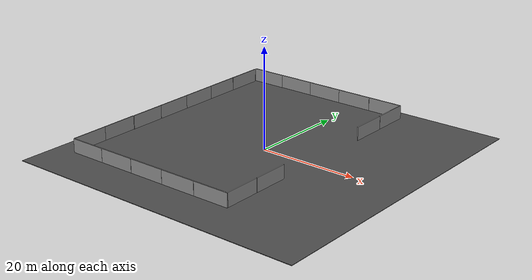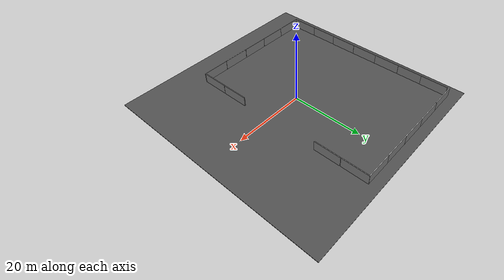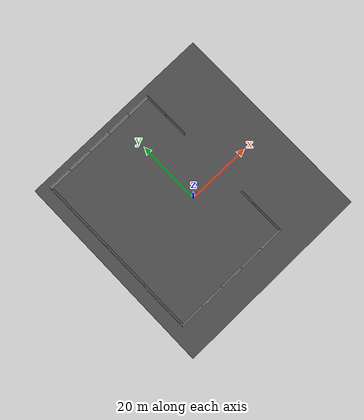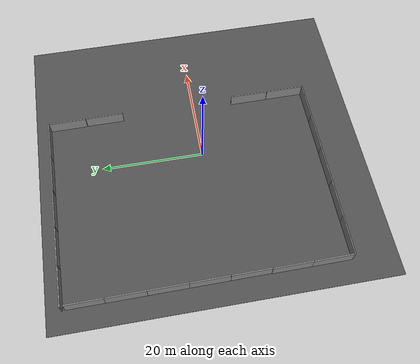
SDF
<sdf version="1.7">
 <world name="default">
  <light name="sun" type="directional">
   <pose>0 0 10 0 -0 0</pose>
   <diffuse>1 1 1 1</diffuse>
   <specular>0.2 0.2 0.2 1</specular>
   <attenuation>
    <range>1000</range>
    <constant>0.9</constant>
    <linear>0.01</linear>
    <quadratic>0.001</quadratic>
   </attenuation>
   <direction>-0.5 -0.5 -1</direction>
   <spot><inner_angle>0</inner_angle><outer_angle>0</outer_angle><falloff>0</falloff></spot>
  </light>
  <physics type="ode">
   <max_step_size>0.001</max_step_size>
   <real_time_factor>1</real_time_factor>
   <real_time_update_rate>1000</real_time_update_rate>
  </physics>
  <scene>
   <ambient>1 1 1 1</ambient>
   <background>1 1 1 1</background>
   <shadows>1</shadows>
   <sky><clouds><speed>12</speed></clouds></sky>
  </scene>
  <spherical_coordinates>
   <surface_model>EARTH_WGS84</surface_model>
   <latitude_deg>39.5122</latitude_deg>
   <longitude_deg>22.4267</longitude_deg>
   <elevation>344</elevation>
   <heading_deg>0</heading_deg>
  </spherical_coordinates>
  <gravity>0 0 -9.8</gravity>
  <magnetic_field>6e-06 2.3e-05 -4.2e-05</magnetic_field>
  <atmosphere type="adiabatic"/>
  <model name="asphalt_plane">
   <static>1</static>
   <link name="link">
    <collision name="collision"><geometry><box><size>62.1908 64.4728 0.1</size></box></geometry></collision>
    <visual name="visual">
     <cast_shadows>0</cast_shadows>
     <geometry><box><size>62.1908 64.4728 0.1</size></box></geometry>
     <material>
      <script>
       <uri>model://asphalt_plane/materials/scripts</uri>
       <uri>model://asphalt_plane/materials/textures</uri>
       <name>vrc/asphalt</name>
      </script>
     </material>
    </visual>
   </link>
   <pose>0.190531 0.410005 0 0 -0 0</pose>
  </model>
  <model name="grey_wall">
   <static>1</static>
   <link name="link">
    <pose>0 0 1.4 0 -0 0</pose>
    <collision name="collision"><geometry><box><size>7.5 0.2 2.8</size></box></geometry></collision>
    <visual name="visual">
     <cast_shadows>0</cast_shadows>
     <geometry><box><size>7.5 0.2 2.8</size></box></geometry>
     <material>
      <script>
       <uri>model://grey_wall/materials/scripts</uri>
       <uri>model://grey_wall/materials/textures</uri>
       <name>vrc/grey_wall</name>
      </script>
     </material>
    </visual>
   </link>
   <pose>6.94667 29.7483 0 0 -0 0</pose>
  </model>
  <model name="grey_wall_clone_0">
   <static>1</static>
   <link name="link">
    <pose>0 0 1.4 0 -0 0</pose>
    <collision name="collision"><geometry><box><size>7.5 0.2 2.8</size></box></geometry></collision>
    <visual name="visual">
     <cast_shadows>0</cast_shadows>
     <geometry><box><size>7.5 0.2 2.8</size></box></geometry>
     <material>
      <script>
       <uri>model://grey_wall/materials/scripts</uri>
       <uri>model://grey_wall/materials/textures</uri>
       <name>vrc/grey_wall</name>
      </script>
     </material>
    </visual>
   </link>
   <pose>-0.578864 29.7347 0 0 -0 0</pose>
  </model>
  <model name="grey_wall_clone_1">
   <static>1</static>
   <link name="link">
    <pose>0 0 1.4 0 -0 0</pose>
    <collision name="collision"><geometry><box><size>7.5 0.2 2.8</size></box></geometry></collision>
    <visual name="visual">
     <cast_shadows>0</cast_shadows>
     <geometry><box><size>7.5 0.2 2.8</size></box></geometry>
     <material>
      <script>
       <uri>model://grey_wall/materials/scripts</uri>
       <uri>model://grey_wall/materials/textures</uri>
       <name>vrc/grey_wall</name>
      </script>
     </material>
    </visual>
   </link>
   <pose>-8.08786 29.7454 0 0 -0 0</pose>
  </model>
  <model name="grey_wall_clone_2">
   <static>1</static>
   <link name="link">
    <pose>0 0 1.4 0 -0 0</pose>
    <collision name="collision"><geometry><box><size>7.5 0.2 2.8</size></box></geometry></collision>
    <visual name="visual">
     <cast_shadows>0</cast_shadows>
     <geometry><box><size>7.5 0.2 2.8</size></box></geometry>
     <material>
      <script>
       <uri>model://grey_wall/materials/scripts</uri>
       <uri>model://grey_wall/materials/textures</uri>
       <name>vrc/grey_wall</name>
      </script>
     </material>
    </visual>
   </link>
   <pose>-15.5998 29.7424 0 0 -0 0</pose>
  </model>
  <model name="grey_wall_clone_4_clone">
   <static>1</static>
   <link name="link">
    <pose>0 0 1.4 0 -0 0</pose>
    <collision name="collision"><geometry><box><size>7.5 0.2 2.8</size></box></geometry></collision>
    <visual name="visual">
     <cast_shadows>0</cast_shadows>
     <geometry><box><size>7.5 0.2 2.8</size></box></geometry>
     <material>
      <script>
       <uri>model://grey_wall/materials/scripts</uri>
       <uri>model://grey_wall/materials/textures</uri>
       <name>vrc/grey_wall</name>
      </script>
     </material>
    </visual>
   </link>
   <pose>-26.6363 18.3197 0 0 0 -1.56482</pose>
  </model>
  <model name="grey_wall_clone_4_clone_0">
   <static>1</static>
   <link name="link">
    <pose>0 0 1.4 0 -0 0</pose>
    <collision name="collision"><geometry><box><size>7.5 0.2 2.8</size></box></geometry></collision>
    <visual name="visual">
     <cast_shadows>0</cast_shadows>
     <geometry><box><size>7.5 0.2 2.8</size></box></geometry>
     <material>
      <script>
       <uri>model://grey_wall/materials/scripts</uri>
       <uri>model://grey_wall/materials/textures</uri>
       <name>vrc/grey_wall</name>
      </script>
     </material>
    </visual>
   </link>
   <pose>-26.5806 10.8018 0 0 0 -1.56482</pose>
  </model>
  <model name="grey_wall_clone_4_clone_1">
   <static>1</static>
   <link name="link">
    <pose>0 0 1.4 0 -0 0</pose>
    <collision name="collision"><geometry><box><size>7.5 0.2 2.8</size></box></geometry></collision>
    <visual name="visual">
     <cast_shadows>0</cast_shadows>
     <geometry><box><size>7.5 0.2 2.8</size></box></geometry>
     <material>
      <script>
       <uri>model://grey_wall/materials/scripts</uri>
       <uri>model://grey_wall/materials/textures</uri>
       <name>vrc/grey_wall</name>
      </script>
     </material>
    </visual>
   </link>
   <pose>-26.5308 3.32597 0 0 0 -1.56482</pose>
  </model>
  <model name="grey_wall_clone_4_clone_2">
   <static>1</static>
   <link name="link">
    <pose>0 0 1.4 0 -0 0</pose>
    <collision name="collision"><geometry><box><size>7.5 0.2 2.8</size></box></geometry></collision>
    <visual name="visual">
     <cast_shadows>0</cast_shadows>
     <geometry><box><size>7.5 0.2 2.8</size></box></geometry>
     <material>
      <script>
       <uri>model://grey_wall/materials/scripts</uri>
       <uri>model://grey_wall/materials/textures</uri>
       <name>vrc/grey_wall</name>
      </script>
     </material>
    </visual>
   </link>
   <pose>-26.4801 -4.20136 0 0 0 -1.56482</pose>
  </model>
  <model name="grey_wall_clone_4_clone_3">
   <static>1</static>
   <link name="link">
    <pose>0 0 1.4 0 -0 0</pose>
    <collision name="collision"><geometry><box><size>7.5 0.2 2.8</size></box></geometry></collision>
    <visual name="visual">
     <cast_shadows>0</cast_shadows>
     <geometry><box><size>7.5 0.2 2.8</size></box></geometry>
     <material>
      <script>
       <uri>model://grey_wall/materials/scripts</uri>
       <uri>model://grey_wall/materials/textures</uri>
       <name>vrc/grey_wall</name>
      </script>
     </material>
    </visual>
   </link>
   <pose>-26.5124 -11.7372 0 0 0 -1.56482</pose>
  </model>
  <model name="grey_wall_clone_4_clone_4">
   <static>1</static>
   <link name="link">
    <pose>0 0 1.4 0 -0 0</pose>
    <collision name="collision"><geometry><box><size>7.5 0.2 2.8</size></box></geometry></collision>
    <visual name="visual">
     <cast_shadows>0</cast_shadows>
     <geometry><box><size>7.5 0.2 2.8</size></box></geometry>
     <material>
      <script>
       <uri>model://grey_wall/materials/scripts</uri>
       <uri>model://grey_wall/materials/textures</uri>
       <name>vrc/grey_wall</name>
      </script>
     </material>
    </visual>
   </link>
   <pose>-26.4647 -19.24 0 0 0 -1.56482</pose>
  </model>
  <model name="grey_wall_clone_3_clone_clone">
   <static>1</static>
   <link name="link">
    <pose>0 0 1.4 0 -0 0</pose>
    <collision name="collision"><geometry><box><size>7.5 0.2 2.8</size></box></geometry></collision>
    <visual name="visual">
     <cast_shadows>0</cast_shadows>
     <geometry><box><size>7.5 0.2 2.8</size></box></geometry>
     <material>
      <script>
       <uri>model://grey_wall/materials/scripts</uri>
       <uri>model://grey_wall/materials/textures</uri>
       <name>vrc/grey_wall</name>
      </script>
     </material>
    </visual>
   </link>
   <pose>-15.2674 -23.1318 0 0 -0 0</pose>
  </model>
  <model name="grey_wall_clone_3_clone_clone_clone">
   <static>1</static>
   <link name="link">
    <pose>0 0 1.4 0 -0 0</pose>
    <collision name="collision"><geometry><box><size>7.5 0.2 2.8</size></box></geometry></collision>
    <visual name="visual">
     <cast_shadows>0</cast_shadows>
     <geometry><box><size>7.5 0.2 2.8</size></box></geometry>
     <material>
      <script>
       <uri>model://grey_wall/materials/scripts</uri>
       <uri>model://grey_wall/materials/textures</uri>
       <name>vrc/grey_wall</name>
      </script>
     </material>
    </visual>
   </link>
   <pose>-7.72381 -23.1334 0 0 -0 0</pose>
  </model>
  <model name="grey_wall_clone_3_clone_clone_clone_0">
   <static>1</static>
   <link name="link">
    <pose>0 0 1.4 0 -0 0</pose>
    <collision name="collision"><geometry><box><size>7.5 0.2 2.8</size></box></geometry></collision>
    <visual name="visual">
     <cast_shadows>0</cast_shadows>
     <geometry><box><size>7.5 0.2 2.8</size></box></geometry>
     <material>
      <script>
       <uri>model://grey_wall/materials/scripts</uri>
       <uri>model://grey_wall/materials/textures</uri>
       <name>vrc/grey_wall</name>
      </script>
     </material>
    </visual>
   </link>
   <pose>-0.190117 -23.1494 0 0 -0 0</pose>
  </model>
  <model name="grey_wall_clone_3_clone_clone_clone_1">
   <static>1</static>
   <link name="link">
    <pose>0 0 1.4 0 -0 0</pose>
    <collision name="collision"><geometry><box><size>7.5 0.2 2.8</size></box></geometry></collision>
    <visual name="visual">
     <cast_shadows>0</cast_shadows>
     <geometry><box><size>7.5 0.2 2.8</size></box></geometry>
     <material>
      <script>
       <uri>model://grey_wall/materials/scripts</uri>
       <uri>model://grey_wall/materials/textures</uri>
       <name>vrc/grey_wall</name>
      </script>
     </material>
    </visual>
   </link>
   <pose>7.34187 -23.1387 0 0 -0 0</pose>
  </model>
  <model name="grey_wall_clone_4_clone_2_clone_clone">
   <static>1</static>
   <link name="link">
    <pose>0 0 1.4 0 -0 0</pose>
    <collision name="collision"><geometry><box><size>7.5 0.2 2.8</size></box></geometry></collision>
    <visual name="visual">
     <cast_shadows>0</cast_shadows>
     <geometry><box><size>7.5 0.2 2.8</size></box></geometry>
     <material>
      <script>
       <uri>model://grey_wall/materials/scripts</uri>
       <uri>model://grey_wall/materials/textures</uri>
       <name>vrc/grey_wall</name>
      </script>
     </material>
    </visual>
   </link>
   <pose>10.9306 -11.7586 0 0 0 -1.56482</pose>
  </model>
  <model name="grey_wall_clone_4_clone_2_clone_clone_3">
   <static>1</static>
   <link name="link">
    <pose>0 0 1.4 0 -0 0</pose>
    <collision name="collision"><geometry><box><size>7.5 0.2 2.8</size></box></geometry></collision>
    <visual name="visual">
     <cast_shadows>0</cast_shadows>
     <geometry><box><size>7.5 0.2 2.8</size></box></geometry>
     <material>
      <script>
       <uri>model://grey_wall/materials/scripts</uri>
       <uri>model://grey_wall/materials/textures</uri>
       <name>vrc/grey_wall</name>
      </script>
     </material>
    </visual>
   </link>
   <pose>10.7168 18.4728 0 0 0 -1.56482</pose>
  </model>
  <model name="grey_wall_clone_4_clone_2_clone_clone_4">
   <static>1</static>
   <link name="link">
    <pose>0 0 1.4 0 -0 0</pose>
    <collision name="collision"><geometry><box><size>7.5 0.2 2.8</size></box></geometry></collision>
    <visual name="visual">
     <cast_shadows>0</cast_shadows>
     <geometry><box><size>7.5 0.2 2.8</size></box></geometry>
     <material>
      <script>
       <uri>model://grey_wall/materials/scripts</uri>
       <uri>model://grey_wall/materials/textures</uri>
       <name>vrc/grey_wall</name>
      </script>
     </material>
    </visual>
   </link>
   <pose>10.6409 26.0622 0 0 0 -1.56482</pose>
  </model>
  <model name="grey_wall_clone_4_clone_2_clone_clone_clone">
   <static>1</static>
   <link name="link">
    <pose>0 0 1.4 0 -0 0</pose>
    <collision name="collision"><geometry><box><size>7.5 0.2 2.8</size></box></geometry></collision>
    <visual name="visual">
     <cast_shadows>0</cast_shadows>
     <geometry><box><size>7.5 0.2 2.8</size></box></geometry>
     <material>
      <script>
       <uri>model://grey_wall/materials/scripts</uri>
       <uri>model://grey_wall/materials/textures</uri>
       <name>vrc/grey_wall</name>
      </script>
     </material>
    </visual>
   </link>
   <pose>10.966 -19.3195 0 0 0 -1.56482</pose>
  </model>
  <model name="grey_wall_clone_3_clone_clone_clone_clone">
   <static>1</static>
   <link name="link">
    <pose>0 0 1.4 0 -0 0</pose>
    <collision name="collision"><geometry><box><size>7.5 0.2 2.8</size></box></geometry></collision>
    <visual name="visual">
     <cast_shadows>0</cast_shadows>
     <geometry><box><size>7.5 0.2 2.8</size></box></geometry>
     <material>
      <script>
       <uri>model://grey_wall/materials/scripts</uri>
       <uri>model://grey_wall/materials/textures</uri>
       <name>vrc/grey_wall</name>
      </script>
     </material>
    </visual>
   </link>
   <pose>-22.7422 -23.1386 0 0 -0 0</pose>
  </model>
  <model name="grey_wall_clone_1_clone">
   <static>1</static>
   <link name="link">
    <pose>0 0 1.4 0 -0 0</pose>
    <collision name="collision"><geometry><box><size>7.5 0.2 2.8</size></box></geometry></collision>
    <visual name="visual">
     <cast_shadows>0</cast_shadows>
     <geometry><box><size>7.5 0.2 2.8</size></box></geometry>
     <material>
      <script>
       <uri>model://grey_wall/materials/scripts</uri>
       <uri>model://grey_wall/materials/textures</uri>
       <name>vrc/grey_wall</name>
      </script>
     </material>
    </visual>
   </link>
   <pose>-23.1095 29.6856 0 0 -0 0</pose>
  </model>
  <model name="grey_wall_clone_4_clone_0_clone">
   <static>1</static>
   <link name="link">
    <pose>0 0 1.4 0 -0 0</pose>
    <collision name="collision"><geometry><box><size>7.5 0.2 2.8</size></box></geometry></collision>
    <visual name="visual">
     <cast_shadows>0</cast_shadows>
     <geometry><box><size>7.5 0.2 2.8</size></box></geometry>
     <material>
      <script>
       <uri>model://grey_wall/materials/scripts</uri>
       <uri>model://grey_wall/materials/textures</uri>
       <name>vrc/grey_wall</name>
      </script>
     </material>
    </visual>
   </link>
   <pose>-26.655 25.3825 0 0 0 -1.56482</pose>
  </model>
 </world>
</sdf>
